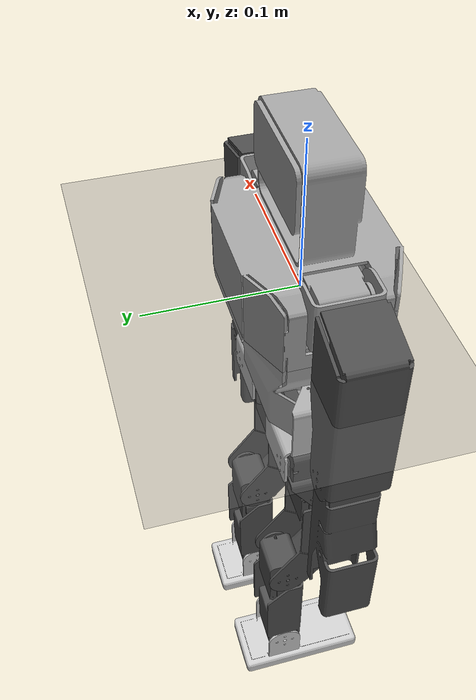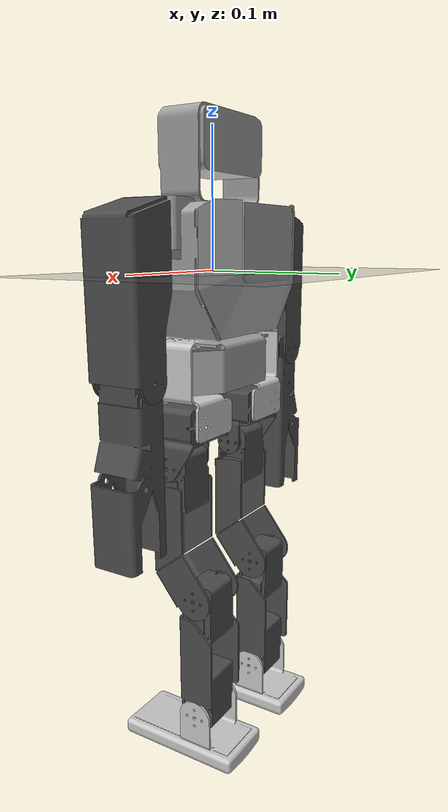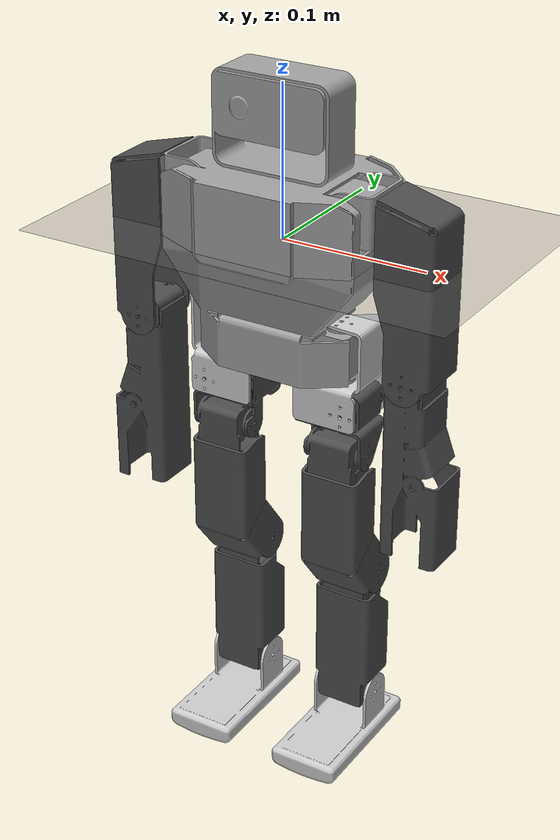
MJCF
<mujoco model="z-02_urdf_assembly">
  <option iterations="50" timestep="0.001" solver="PGS" gravity="0 0 -9.81" />

  <compiler angle="radian" meshdir="meshes" eulerseq="zyx" autolimits="true" />

  <default>
    <joint limited="true" damping="0.01" armature="0.01" frictionloss="0.01" />
    <geom condim="4" contype="1" conaffinity="15" friction="0.9 0.2 0.2" solref="0.001 2" />
    <motor ctrllimited="true" />
    <equality solref="0.001 2" />
    <default class="visualgeom">
      <geom material="visualgeom" condim="1" contype="0" conaffinity="0" />
    </default>
  </default>

  <asset>
    <mesh name="Document" file="Document.stl" />
    <mesh name="Z-BOT2_MASTER-v24_DEC07-ASSY_v3" file="Z-BOT2_MASTER-v24_DEC07-ASSY_v3.stl" />
    <mesh name="Z-BOT2_MASTER-v24_DEC07-ASSY_v3_2" file="Z-BOT2_MASTER-v24_DEC07-ASSY_v3_2.stl" />
    <mesh name="SERVO-DUAL_v2_2" file="SERVO-DUAL_v2_2.stl" />
    <mesh name="SERVO-DUAL_v2_2_2" file="SERVO-DUAL_v2_2_2.stl" />
    <mesh name="Z-BOT2_MASTER-v24_DEC07-ASSY_v3_3" file="Z-BOT2_MASTER-v24_DEC07-ASSY_v3_3.stl" />
    <mesh name="Z-BOT2_MASTER-v24_DEC07-ASSY_v3_4" file="Z-BOT2_MASTER-v24_DEC07-ASSY_v3_4.stl" />
    <mesh name="SERVO-DUAL_v2" file="SERVO-DUAL_v2.stl" />
    <mesh name="SERVO-DUAL_v2(Mirror)" file="SERVO-DUAL_v2(Mirror).stl" />
    <mesh name="SERVO-DUAL_v2_1" file="SERVO-DUAL_v2_1.stl" />
    <mesh name="SERVO-DUAL_v2(Mirror)_1" file="SERVO-DUAL_v2(Mirror)_1.stl" />
    <mesh name="SERVO-DUAL_v2_5" file="SERVO-DUAL_v2_5.stl" />
    <mesh name="SERVO-DUAL_v2(Mirror)_4" file="SERVO-DUAL_v2(Mirror)_4.stl" />
    <mesh name="SERVO-DUAL_v2_4" file="SERVO-DUAL_v2_4.stl" />
    <mesh name="SERVO-DUAL_v2(Mirror)_3" file="SERVO-DUAL_v2(Mirror)_3.stl" />
    <mesh name="Z-BOT2_MASTER-v24_DEC07-ASSY_v3_5" file="Z-BOT2_MASTER-v24_DEC07-ASSY_v3_5.stl" />
    <mesh name="Z-BOT2_MASTER-v24_DEC07-ASSY_v3_6" file="Z-BOT2_MASTER-v24_DEC07-ASSY_v3_6.stl" />
    <texture name="texplane" type="2d" builtin="checker" rgb1=".0 .0 .0" rgb2=".8 .8 .8" width="100" height="100" />
    <material name="matplane" reflectance="0." texture="texplane" texrepeat="1 1" texuniform="true" />
    <material name="visualgeom" rgba="0.5 0.9 0.2 1" />
  </asset>

  <worldbody>
    <light directional="true" diffuse="0.4 0.4 0.4" specular="0.1 0.1 0.1" pos="0 0 5.0" dir="0 0 -1" castshadow="false" />
    <light directional="true" diffuse="0.6 0.6 0.6" specular="0.2 0.2 0.2" pos="0 0 4" dir="0 0 -1" />
    <geom name="ground" type="plane" pos="0 0 0" size="100 100 0.001" quat="1 0 0 0" material="matplane" condim="3" conaffinity="15" />
    <camera name="fixed" pos="0 -3.0 0.5" xyaxes="1 0 0 0 0 1" />
    <camera name="track" mode="trackcom" pos="0 -3.0 0.5" xyaxes="1 0 0 0 0 1" />
    <body name="root" pos="0 0 0.01" quat="1 0 0 0">
      <freejoint name="root" />
      <site name="imu" size="0.01" pos="0 0 0" />
      <geom type="mesh" rgba="0.627451 0.627451 0.627451 1" mesh="Document" contype="1" conaffinity="0" density="0" group="1" class="visualgeom" />
      <geom type="mesh" rgba="0.627451 0.627451 0.627451 1" mesh="Document" />
      <body name="Z-BOT2_MASTER-v24_DEC07-ASSY_v3" pos="0.0571947 0.0162806 0.0210943" quat="0.707107 0.707107 0 0">
        <inertial pos="0.00688879 0.00104244 0.018825" quat="0.707107 0 0 0.707107" mass="0.0166453" diaginertia="6.45179e-06 6.14193e-06 3.08311e-06" />
        <joint name="left_shoulder_yaw" pos="0 0 0" axis="0 0 1" range="-0.174533 1.39626" actuatorfrcrange="-80 80" />
        <geom type="mesh" rgba="0.627451 0.627451 0.627451 1" mesh="Z-BOT2_MASTER-v24_DEC07-ASSY_v3" contype="1" conaffinity="0" density="0" group="1" class="visualgeom" />
        <geom type="mesh" rgba="0.627451 0.627451 0.627451 1" mesh="Z-BOT2_MASTER-v24_DEC07-ASSY_v3" />
        <body name="SERVO-DUAL_v2_2" pos="0.0170677 -0.00481845 0.0188262" quat="-1.64085e-08 0.707107 -1.64085e-08 -0.707107">
          <inertial pos="-5.23975e-06 0.0224375 -0.022559" quat="0.533099 0.464195 -0.46444 0.533501" mass="0.166183" diaginertia="0.000152049 0.000147452 4.50128e-05" />
          <joint name="left_shoulder_pitch" pos="0 0 0" axis="0 0 1" range="-3.14159 3.14159" actuatorfrcrange="-80 80" />
          <geom type="mesh" rgba="0.301961 0.301961 0.301961 1" mesh="SERVO-DUAL_v2_2" contype="1" conaffinity="0" density="0" group="1" class="visualgeom" />
          <geom type="mesh" rgba="0.301961 0.301961 0.301961 1" mesh="SERVO-DUAL_v2_2" />
          <body name="SERVO-DUAL_v2_1" pos="-0.018825 0.0936838 -0.0234507" quat="1.64085e-08 0.707107 1.64085e-08 -0.707107">
            <inertial pos="0.00102061 -0.0346483 -0.0187992" quat="0.703848 0.70929 0.0151712 0.0357068" mass="0.165985" diaginertia="0.000223707 0.000222412 4.00551e-05" />
            <joint name="left_elbow_yaw" pos="0 0 0" axis="0 0 1" range="-2.26893 1.5708" actuatorfrcrange="-80 80" />
            <geom type="mesh" rgba="0.301961 0.301961 0.301961 1" mesh="SERVO-DUAL_v2_1" contype="1" conaffinity="0" density="0" group="1" class="visualgeom" />
            <geom type="mesh" rgba="0.301961 0.301961 0.301961 1" mesh="SERVO-DUAL_v2_1" />
          </body>
        </body>
      </body>
      <body name="Z-BOT2_MASTER-v24_DEC07-ASSY_v3_2" pos="-0.0563661 0.0162806 0.0210943" quat="0.707107 0.707107 0 0">
        <inertial pos="-0.00688879 0.00104244 0.018825" quat="0.707107 0 0 0.707107" mass="0.0166453" diaginertia="6.45179e-06 6.14193e-06 3.08311e-06" />
        <joint name="right_shoulder_yaw" pos="0 0 0" axis="0 0 1" range="-1.39626 0.174533" actuatorfrcrange="-80 80" />
        <geom type="mesh" rgba="0.627451 0.627451 0.627451 1" mesh="Z-BOT2_MASTER-v24_DEC07-ASSY_v3_2" contype="1" conaffinity="0" density="0" group="1" class="visualgeom" />
        <geom type="mesh" rgba="0.627451 0.627451 0.627451 1" mesh="Z-BOT2_MASTER-v24_DEC07-ASSY_v3_2" />
        <body name="SERVO-DUAL_v2_2_2" pos="-0.0170677 -0.00481845 0.0188262" quat="0.707107 0 0.707107 0">
          <inertial pos="-5.22821e-06 -0.0224375 -0.022559" quat="0.464195 0.5331 -0.533501 0.464439" mass="0.166183" diaginertia="0.000152049 0.000147452 4.50128e-05" />
          <joint name="right_shoulder_pitch" pos="0 0 0" axis="0 0 1" range="-3.14159 3.14159" actuatorfrcrange="-80 80" />
          <geom type="mesh" rgba="0.301961 0.301961 0.301961 1" mesh="SERVO-DUAL_v2_2_2" contype="1" conaffinity="0" density="0" group="1" class="visualgeom" />
          <geom type="mesh" rgba="0.301961 0.301961 0.301961 1" mesh="SERVO-DUAL_v2_2_2" />
          <body name="SERVO-DUAL_v2(Mirror)_1" pos="-0.018825 -0.0936838 -0.0234507" quat="0.707107 0 -0.707107 0">
            <inertial pos="-0.00102061 -0.0346483 -0.0187992" quat="0.703848 0.70929 -0.0151712 -0.0357069" mass="0.165985" diaginertia="0.000223707 0.000222412 4.00551e-05" />
            <joint name="right_elbow_yaw" pos="0 0 0" axis="0 0 1" range="-1.5708 2.26893" actuatorfrcrange="-80 80" />
            <geom type="mesh" rgba="0.301961 0.301961 0.301961 1" mesh="SERVO-DUAL_v2(Mirror)_1" contype="1" conaffinity="0" density="0" group="1" class="visualgeom" />
            <geom type="mesh" rgba="0.301961 0.301961 0.301961 1" mesh="SERVO-DUAL_v2(Mirror)_1" />
          </body>
        </body>
      </body>
      <body name="Z-BOT2_MASTER-v24_DEC07-ASSY_v3_3" pos="0.0429803 -0.000144909 -0.057946" quat="2.32051e-08 -1 0 0">
        <inertial pos="0.00370843 -0.00550255 0.0354391" quat="0.976233 0 -0.216724 0" mass="0.0300932" diaginertia="2.0833e-05 1.76325e-05 1.01908e-05" />
        <joint name="left_hip_roll" pos="0 0 0" axis="0 0 1" range="-1.0472 1.0472" actuatorfrcrange="-80 80" />
        <geom type="mesh" rgba="0.8 0.8 0.8 1" mesh="Z-BOT2_MASTER-v24_DEC07-ASSY_v3_3" contype="1" conaffinity="0" density="0" group="1" class="visualgeom" />
        <geom type="mesh" rgba="0.8 0.8 0.8 1" mesh="Z-BOT2_MASTER-v24_DEC07-ASSY_v3_3" />
        <body name="SERVO-DUAL_v2" pos="0.00825001 -0.0245994 0.0566073" quat="0.707107 0.707107 0 0">
          <inertial pos="-0.012522 0.00235341 -0.019172" quat="0.460257 0.517904 0.482535 0.535816" mass="0.110875" diaginertia="3.09672e-05 2.98293e-05 2.00643e-05" />
          <joint name="left_hip_yaw" pos="0 0 0" axis="0 0 1" range="-1.91986 0.174533" actuatorfrcrange="-80 80" />
          <geom type="mesh" rgba="0.301961 0.301961 0.301961 1" mesh="SERVO-DUAL_v2" contype="1" conaffinity="0" density="0" group="1" class="visualgeom" />
          <geom type="mesh" rgba="0.301961 0.301961 0.301961 1" mesh="SERVO-DUAL_v2" />
          <body name="SERVO-DUAL_v2_5" pos="0.0102907 0.0316618 -0.0246589" quat="9.47343e-09 0.707107 -9.47343e-09 0.707107">
            <inertial pos="-0.000135813 -0.0317215 -0.0187573" quat="0.704186 0.70948 0.0214769 0.017302" mass="0.145867" diaginertia="0.000174828 0.00016411 3.55103e-05" />
            <joint name="left_hip_pitch" pos="0 0 0" axis="0 0 1" range="-1.8326 1.74533" actuatorfrcrange="-80 80" />
            <geom type="mesh" rgba="0.301961 0.301961 0.301961 1" mesh="SERVO-DUAL_v2_5" contype="1" conaffinity="0" density="0" group="1" class="visualgeom" />
            <geom type="mesh" rgba="0.301961 0.301961 0.301961 1" mesh="SERVO-DUAL_v2_5" />
            <body name="SERVO-DUAL_v2_4" pos="0.0215 -0.100438 -0.000289529" quat="1 -2.32051e-08 0 2.32051e-08">
              <inertial pos="-0.000995613 -0.0509788 -0.0186821" quat="0.706671 0.70753 0.00098998 -0.00411008" mass="0.226937" diaginertia="0.00033879 0.000325457 4.05469e-05" />
              <joint name="left_knee_pitch" pos="0 0 0" axis="0 0 1" range="-0.174533 2.96706" actuatorfrcrange="-80 80" />
              <geom type="mesh" rgba="0.301961 0.301961 0.301961 1" mesh="SERVO-DUAL_v2_4" contype="1" conaffinity="0" density="0" group="1" class="visualgeom" />
              <geom type="mesh" rgba="0.301961 0.301961 0.301961 1" mesh="SERVO-DUAL_v2_4" />
              <body name="Z-BOT2_MASTER-v24_DEC07-ASSY_v3_5" pos="-3.64965e-09 -0.0996005 -6.45193e-05" quat="2.32051e-08 -1 0 0">
                <inertial pos="-0.0145276 0.0278842 0.018825" quat="0.512207 0.512207 0.487488 0.487488" mass="0.102093" diaginertia="9.78274e-05 8.48407e-05 2.82233e-05" />
                <joint name="left_ankle_pitch" pos="0 0 0" axis="0 0 1" range="-1.5708 1.5708" actuatorfrcrange="-80 80" />
                <geom type="mesh" rgba="0.8 0.8 0.8 1" mesh="Z-BOT2_MASTER-v24_DEC07-ASSY_v3_5" contype="1" conaffinity="0" density="0" group="1" class="visualgeom" />
                <geom type="mesh" rgba="0.8 0.8 0.8 1" mesh="Z-BOT2_MASTER-v24_DEC07-ASSY_v3_5" />
              </body>
            </body>
          </body>
        </body>
      </body>
      <body name="Z-BOT2_MASTER-v24_DEC07-ASSY_v3_4" pos="-0.0426961 -0.000144909 -0.057946" quat="2.32051e-08 -1 0 0">
        <inertial pos="-0.00370843 -0.00550255 0.0354391" quat="0.976233 0 0.216724 0" mass="0.0300932" diaginertia="2.0833e-05 1.76325e-05 1.01908e-05" />
        <joint name="right_hip_roll" pos="0 0 0" axis="0 0 1" range="-1.0472 1.0472" actuatorfrcrange="-80 80" />
        <geom type="mesh" rgba="0.8 0.8 0.8 1" mesh="Z-BOT2_MASTER-v24_DEC07-ASSY_v3_4" contype="1" conaffinity="0" density="0" group="1" class="visualgeom" />
        <geom type="mesh" rgba="0.8 0.8 0.8 1" mesh="Z-BOT2_MASTER-v24_DEC07-ASSY_v3_4" />
        <body name="SERVO-DUAL_v2(Mirror)" pos="-0.00825001 -0.0245994 0.0566073" quat="0.707107 0.707107 0 0">
          <inertial pos="0.012522 0.00235341 -0.019172" quat="0.482535 0.535817 0.460256 0.517904" mass="0.110875" diaginertia="3.09673e-05 2.98293e-05 2.00643e-05" />
          <joint name="right_hip_yaw" pos="0 0 0" axis="0 0 1" range="-0.174533 1.91986" actuatorfrcrange="-80 80" />
          <geom type="mesh" rgba="0.301961 0.301961 0.301961 1" mesh="SERVO-DUAL_v2(Mirror)" contype="1" conaffinity="0" density="0" group="1" class="visualgeom" />
          <geom type="mesh" rgba="0.301961 0.301961 0.301961 1" mesh="SERVO-DUAL_v2(Mirror)" />
          <body name="SERVO-DUAL_v2(Mirror)_4" pos="-0.0102907 0.0316618 -0.0246589" quat="0.707107 9.47343e-09 -0.707107 9.47343e-09">
            <inertial pos="-0.000135814 0.0317215 -0.0187573" quat="0.70948 0.704186 -0.017302 -0.0214769" mass="0.145867" diaginertia="0.000174828 0.00016411 3.55103e-05" />
            <joint name="right_hip_pitch" pos="0 0 0" axis="0 0 1" range="-1.74533 1.8326" actuatorfrcrange="-80 80" />
            <geom type="mesh" rgba="0.301961 0.301961 0.301961 1" mesh="SERVO-DUAL_v2(Mirror)_4" contype="1" conaffinity="0" density="0" group="1" class="visualgeom" />
            <geom type="mesh" rgba="0.301961 0.301961 0.301961 1" mesh="SERVO-DUAL_v2(Mirror)_4" />
            <body name="SERVO-DUAL_v2(Mirror)_3" pos="0.0215 0.100438 -0.000289527">
              <inertial pos="-0.000995604 0.0509788 -0.0186821" quat="0.70753 0.706671 0.00410998 -0.000990042" mass="0.226937" diaginertia="0.00033879 0.000325457 4.05469e-05" />
              <joint name="right_knee_pitch" pos="0 0 0" axis="0 0 1" range="-2.96706 0.174533" actuatorfrcrange="-80 80" />
              <geom type="mesh" rgba="0.301961 0.301961 0.301961 1" mesh="SERVO-DUAL_v2(Mirror)_3" contype="1" conaffinity="0" density="0" group="1" class="visualgeom" />
              <geom type="mesh" rgba="0.301961 0.301961 0.301961 1" mesh="SERVO-DUAL_v2(Mirror)_3" />
              <body name="Z-BOT2_MASTER-v24_DEC07-ASSY_v3_6" pos="-8.17539e-10 0.0996005 -6.45187e-05" quat="0 -1 2.32051e-08 0">
                <inertial pos="-0.0145276 -0.0278842 0.018825" quat="0.487488 0.487488 0.512207 0.512207" mass="0.102093" diaginertia="9.78274e-05 8.48407e-05 2.82233e-05" />
                <joint name="right_ankle_pitch" pos="0 0 0" axis="0 0 1" range="-1.5708 1.5708" actuatorfrcrange="-80 80" />
                <geom type="mesh" rgba="0.8 0.8 0.8 1" mesh="Z-BOT2_MASTER-v24_DEC07-ASSY_v3_6" contype="1" conaffinity="0" density="0" group="1" class="visualgeom" />
                <geom type="mesh" rgba="0.8 0.8 0.8 1" mesh="Z-BOT2_MASTER-v24_DEC07-ASSY_v3_6" />
              </body>
            </body>
          </body>
        </body>
      </body>
    </body>
  </worldbody>

  <actuator>
    <motor name="left_shoulder_yaw" joint="left_shoulder_yaw" ctrllimited="true" ctrlrange="-80 80" gear="1" />
    <motor name="left_shoulder_pitch" joint="left_shoulder_pitch" ctrllimited="true" ctrlrange="-80 80" gear="1" />
    <motor name="left_elbow_yaw" joint="left_elbow_yaw" ctrllimited="true" ctrlrange="-80 80" gear="1" />
    <motor name="right_shoulder_yaw" joint="right_shoulder_yaw" ctrllimited="true" ctrlrange="-80 80" gear="1" />
    <motor name="right_shoulder_pitch" joint="right_shoulder_pitch" ctrllimited="true" ctrlrange="-80 80" gear="1" />
    <motor name="right_elbow_yaw" joint="right_elbow_yaw" ctrllimited="true" ctrlrange="-80 80" gear="1" />
    <motor name="left_hip_roll" joint="left_hip_roll" ctrllimited="true" ctrlrange="-80 80" gear="1" />
    <motor name="left_hip_yaw" joint="left_hip_yaw" ctrllimited="true" ctrlrange="-80 80" gear="1" />
    <motor name="left_hip_pitch" joint="left_hip_pitch" ctrllimited="true" ctrlrange="-80 80" gear="1" />
    <motor name="left_knee_pitch" joint="left_knee_pitch" ctrllimited="true" ctrlrange="-80 80" gear="1" />
    <motor name="left_ankle_pitch" joint="left_ankle_pitch" ctrllimited="true" ctrlrange="-80 80" gear="1" />
    <motor name="right_hip_roll" joint="right_hip_roll" ctrllimited="true" ctrlrange="-80 80" gear="1" />
    <motor name="right_hip_yaw" joint="right_hip_yaw" ctrllimited="true" ctrlrange="-80 80" gear="1" />
    <motor name="right_hip_pitch" joint="right_hip_pitch" ctrllimited="true" ctrlrange="-80 80" gear="1" />
    <motor name="right_knee_pitch" joint="right_knee_pitch" ctrllimited="true" ctrlrange="-80 80" gear="1" />
    <motor name="right_ankle_pitch" joint="right_ankle_pitch" ctrllimited="true" ctrlrange="-80 80" gear="1" />
  </actuator>

  <sensor>
    <actuatorpos name="left_shoulder_yaw_p" actuator="left_shoulder_yaw" />
    <actuatorvel name="left_shoulder_yaw_v" actuator="left_shoulder_yaw" />
    <actuatorfrc name="left_shoulder_yaw_f" actuator="left_shoulder_yaw" noise="0.001" />
    <actuatorpos name="left_shoulder_pitch_p" actuator="left_shoulder_pitch" />
    <actuatorvel name="left_shoulder_pitch_v" actuator="left_shoulder_pitch" />
    <actuatorfrc name="left_shoulder_pitch_f" actuator="left_shoulder_pitch" noise="0.001" />
    <actuatorpos name="left_elbow_yaw_p" actuator="left_elbow_yaw" />
    <actuatorvel name="left_elbow_yaw_v" actuator="left_elbow_yaw" />
    <actuatorfrc name="left_elbow_yaw_f" actuator="left_elbow_yaw" noise="0.001" />
    <actuatorpos name="right_shoulder_yaw_p" actuator="right_shoulder_yaw" />
    <actuatorvel name="right_shoulder_yaw_v" actuator="right_shoulder_yaw" />
    <actuatorfrc name="right_shoulder_yaw_f" actuator="right_shoulder_yaw" noise="0.001" />
    <actuatorpos name="right_shoulder_pitch_p" actuator="right_shoulder_pitch" />
    <actuatorvel name="right_shoulder_pitch_v" actuator="right_shoulder_pitch" />
    <actuatorfrc name="right_shoulder_pitch_f" actuator="right_shoulder_pitch" noise="0.001" />
    <actuatorpos name="right_elbow_yaw_p" actuator="right_elbow_yaw" />
    <actuatorvel name="right_elbow_yaw_v" actuator="right_elbow_yaw" />
    <actuatorfrc name="right_elbow_yaw_f" actuator="right_elbow_yaw" noise="0.001" />
    <actuatorpos name="left_hip_roll_p" actuator="left_hip_roll" />
    <actuatorvel name="left_hip_roll_v" actuator="left_hip_roll" />
    <actuatorfrc name="left_hip_roll_f" actuator="left_hip_roll" noise="0.001" />
    <actuatorpos name="left_hip_yaw_p" actuator="left_hip_yaw" />
    <actuatorvel name="left_hip_yaw_v" actuator="left_hip_yaw" />
    <actuatorfrc name="left_hip_yaw_f" actuator="left_hip_yaw" noise="0.001" />
    <actuatorpos name="left_hip_pitch_p" actuator="left_hip_pitch" />
    <actuatorvel name="left_hip_pitch_v" actuator="left_hip_pitch" />
    <actuatorfrc name="left_hip_pitch_f" actuator="left_hip_pitch" noise="0.001" />
    <actuatorpos name="left_knee_pitch_p" actuator="left_knee_pitch" />
    <actuatorvel name="left_knee_pitch_v" actuator="left_knee_pitch" />
    <actuatorfrc name="left_knee_pitch_f" actuator="left_knee_pitch" noise="0.001" />
    <actuatorpos name="left_ankle_pitch_p" actuator="left_ankle_pitch" />
    <actuatorvel name="left_ankle_pitch_v" actuator="left_ankle_pitch" />
    <actuatorfrc name="left_ankle_pitch_f" actuator="left_ankle_pitch" noise="0.001" />
    <actuatorpos name="right_hip_roll_p" actuator="right_hip_roll" />
    <actuatorvel name="right_hip_roll_v" actuator="right_hip_roll" />
    <actuatorfrc name="right_hip_roll_f" actuator="right_hip_roll" noise="0.001" />
    <actuatorpos name="right_hip_yaw_p" actuator="right_hip_yaw" />
    <actuatorvel name="right_hip_yaw_v" actuator="right_hip_yaw" />
    <actuatorfrc name="right_hip_yaw_f" actuator="right_hip_yaw" noise="0.001" />
    <actuatorpos name="right_hip_pitch_p" actuator="right_hip_pitch" />
    <actuatorvel name="right_hip_pitch_v" actuator="right_hip_pitch" />
    <actuatorfrc name="right_hip_pitch_f" actuator="right_hip_pitch" noise="0.001" />
    <actuatorpos name="right_knee_pitch_p" actuator="right_knee_pitch" />
    <actuatorvel name="right_knee_pitch_v" actuator="right_knee_pitch" />
    <actuatorfrc name="right_knee_pitch_f" actuator="right_knee_pitch" noise="0.001" />
    <actuatorpos name="right_ankle_pitch_p" actuator="right_ankle_pitch" />
    <actuatorvel name="right_ankle_pitch_v" actuator="right_ankle_pitch" />
    <actuatorfrc name="right_ankle_pitch_f" actuator="right_ankle_pitch" noise="0.001" />
    <framequat name="orientation" objtype="site" noise="0.001" objname="imu" />
    <gyro name="angular-velocity" site="imu" noise="0.005" cutoff="34.9" />
  </sensor>
</mujoco>
